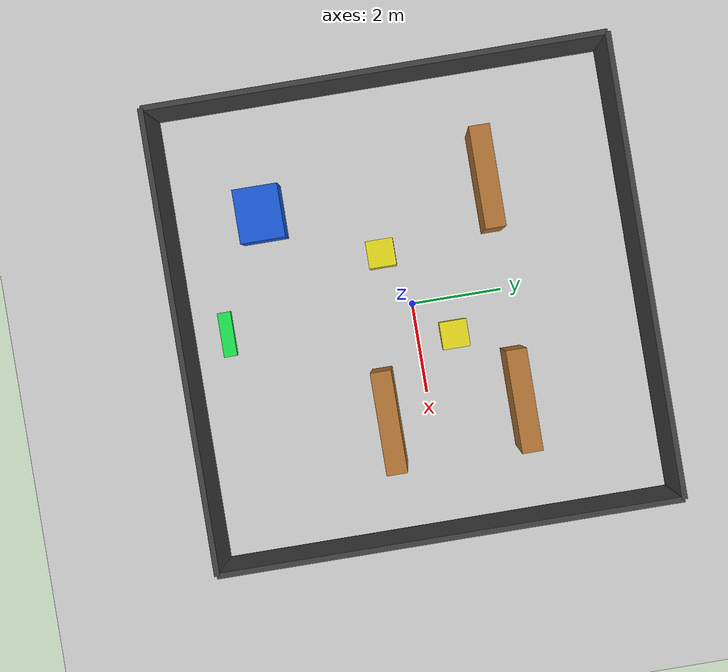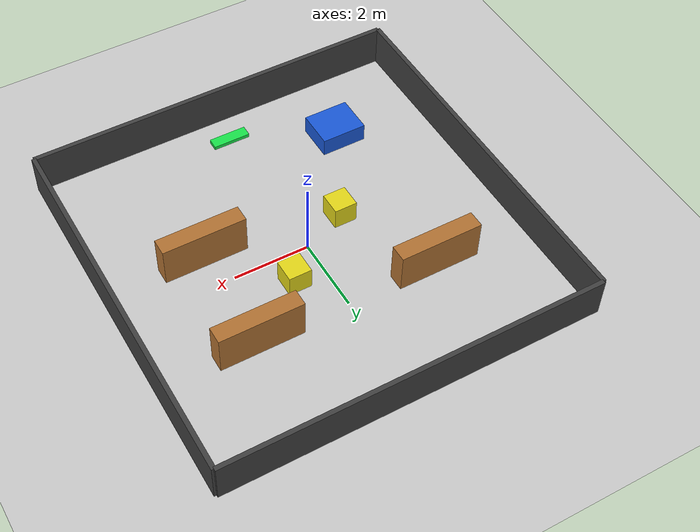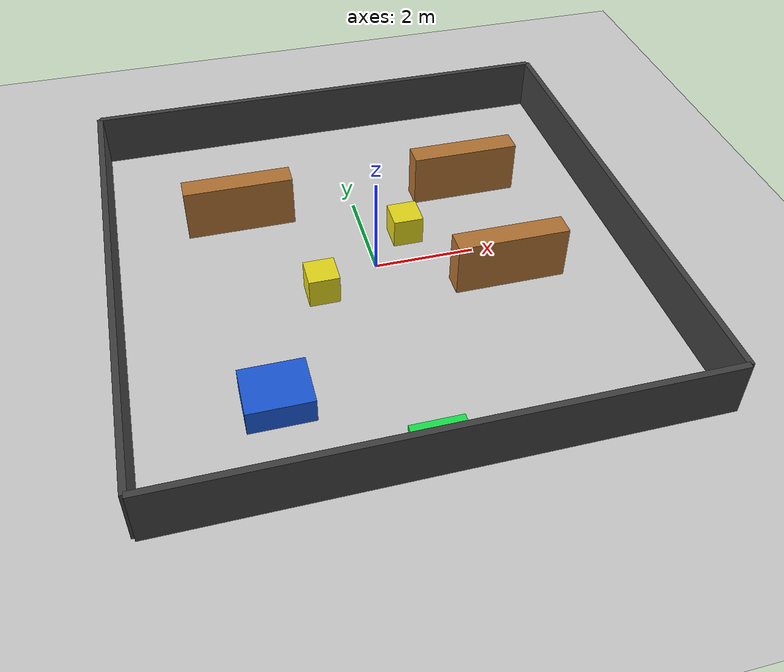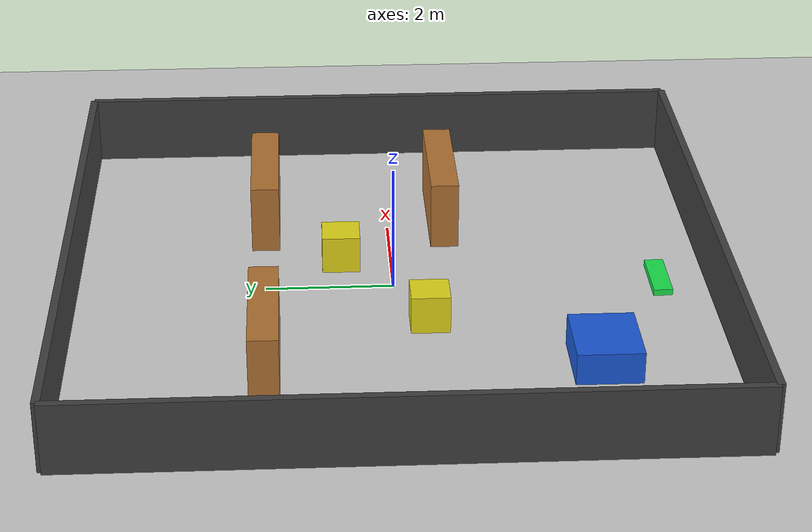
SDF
<?xml version="1.0" ?>
<sdf version="1.6">
  <world name="custom_warehouse_world">
    <physics type="ode">
      <real_time_update_rate>1000.0</real_time_update_rate>
      <max_step_size>0.001</max_step_size>
      <real_time_factor>1</real_time_factor>
    </physics>

    <include>
      <uri>model://ground_plane</uri>
    </include>
    <include>
      <uri>model://sun</uri>
    </include>

    <!-- Boundary walls -->
    <model name="north_wall">
      <static>true</static>
      <pose>0 5 0.55 0 0 0</pose>
      <link name="wall_link">
        <collision name="collision"><geometry><box><size>10 0.12 1.1</size></box></geometry></collision>
        <visual name="visual"><geometry><box><size>10 0.12 1.1</size></box></geometry><material><ambient>0.15 0.15 0.15 1</ambient><diffuse>0.25 0.25 0.25 1</diffuse></material></visual>
      </link>
    </model>
    <model name="south_wall">
      <static>true</static>
      <pose>0 -5 0.55 0 0 0</pose>
      <link name="wall_link">
        <collision name="collision"><geometry><box><size>10 0.12 1.1</size></box></geometry></collision>
        <visual name="visual"><geometry><box><size>10 0.12 1.1</size></box></geometry><material><ambient>0.15 0.15 0.15 1</ambient><diffuse>0.25 0.25 0.25 1</diffuse></material></visual>
      </link>
    </model>
    <model name="east_wall">
      <static>true</static>
      <pose>5 0 0.55 0 0 0</pose>
      <link name="wall_link">
        <collision name="collision"><geometry><box><size>0.12 10 1.1</size></box></geometry></collision>
        <visual name="visual"><geometry><box><size>0.12 10 1.1</size></box></geometry><material><ambient>0.15 0.15 0.15 1</ambient><diffuse>0.25 0.25 0.25 1</diffuse></material></visual>
      </link>
    </model>
    <model name="west_wall">
      <static>true</static>
      <pose>-5 0 0.55 0 0 0</pose>
      <link name="wall_link">
        <collision name="collision"><geometry><box><size>0.12 10 1.1</size></box></geometry></collision>
        <visual name="visual"><geometry><box><size>0.12 10 1.1</size></box></geometry><material><ambient>0.15 0.15 0.15 1</ambient><diffuse>0.25 0.25 0.25 1</diffuse></material></visual>
      </link>
    </model>

    <!-- Warehouse shelves: original-looking simple SDF layout, no external model dependency -->
    <model name="shelf_A_inventory_zone">
      <static>true</static>
      <pose>2.4 2.0 0.55 0 0 0</pose>
      <link name="link">
        <collision name="collision"><geometry><box><size>2.2 0.45 1.1</size></box></geometry></collision>
        <visual name="visual"><geometry><box><size>2.2 0.45 1.1</size></box></geometry><material><ambient>0.55 0.32 0.12 1</ambient><diffuse>0.7 0.45 0.2 1</diffuse></material></visual>
      </link>
    </model>
    <model name="shelf_B_inventory_zone">
      <static>true</static>
      <pose>-2.4 2.0 0.55 0 0 0</pose>
      <link name="link">
        <collision name="collision"><geometry><box><size>2.2 0.45 1.1</size></box></geometry></collision>
        <visual name="visual"><geometry><box><size>2.2 0.45 1.1</size></box></geometry><material><ambient>0.55 0.32 0.12 1</ambient><diffuse>0.7 0.45 0.2 1</diffuse></material></visual>
      </link>
    </model>
    <model name="shelf_C_inventory_zone">
      <static>true</static>
      <pose>2.4 -0.9 0.55 0 0 0</pose>
      <link name="link">
        <collision name="collision"><geometry><box><size>2.2 0.45 1.1</size></box></geometry></collision>
        <visual name="visual"><geometry><box><size>2.2 0.45 1.1</size></box></geometry><material><ambient>0.55 0.32 0.12 1</ambient><diffuse>0.7 0.45 0.2 1</diffuse></material></visual>
      </link>
    </model>
    <model name="packing_dropoff_station">
      <static>true</static>
      <pose>-2.5 -3.0 0.25 0 0 0</pose>
      <link name="link">
        <collision name="collision"><geometry><box><size>1.2 1.0 0.5</size></box></geometry></collision>
        <visual name="visual"><geometry><box><size>1.2 1.0 0.5</size></box></geometry><material><ambient>0.1 0.3 0.7 1</ambient><diffuse>0.1 0.35 0.85 1</diffuse></material></visual>
      </link>
    </model>
    <model name="charging_home_station">
      <static>true</static>
      <pose>0 -4.2 0.05 0 0 0</pose>
      <link name="link">
        <collision name="collision"><geometry><box><size>1.0 0.3 0.1</size></box></geometry></collision>
        <visual name="visual"><geometry><box><size>1.0 0.3 0.1</size></box></geometry><material><ambient>0.1 0.8 0.2 1</ambient><diffuse>0.1 0.9 0.3 1</diffuse></material></visual>
      </link>
    </model>

    <!-- Small obstacle boxes to make movement less empty -->
    <model name="cart_obstacle_1">
      <static>true</static>
      <pose>0.8 0.8 0.3 0 0 0</pose>
      <link name="link"><collision name="collision"><geometry><box><size>0.6 0.6 0.6</size></box></geometry></collision><visual name="visual"><geometry><box><size>0.6 0.6 0.6</size></box></geometry><material><ambient>0.8 0.8 0.1 1</ambient><diffuse>0.9 0.85 0.1 1</diffuse></material></visual></link>
    </model>
    <model name="cart_obstacle_2">
      <static>true</static>
      <pose>-1.2 -0.5 0.3 0 0 0</pose>
      <link name="link"><collision name="collision"><geometry><box><size>0.6 0.6 0.6</size></box></geometry></collision><visual name="visual"><geometry><box><size>0.6 0.6 0.6</size></box></geometry><material><ambient>0.8 0.8 0.1 1</ambient><diffuse>0.9 0.85 0.1 1</diffuse></material></visual></link>
    </model>
  </world>
</sdf>
